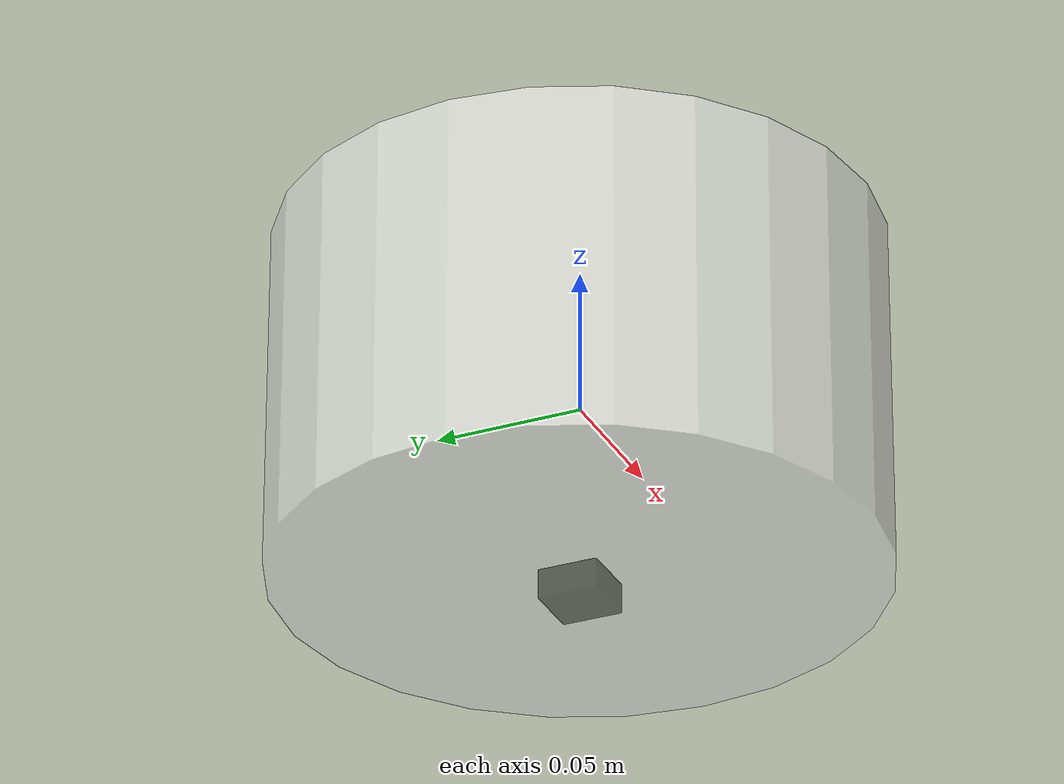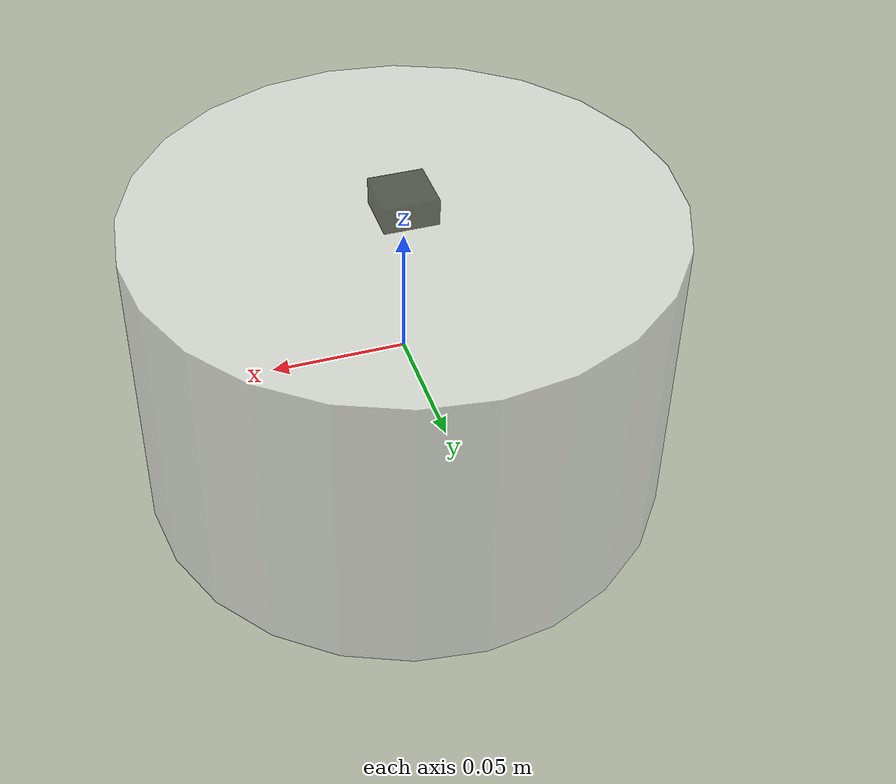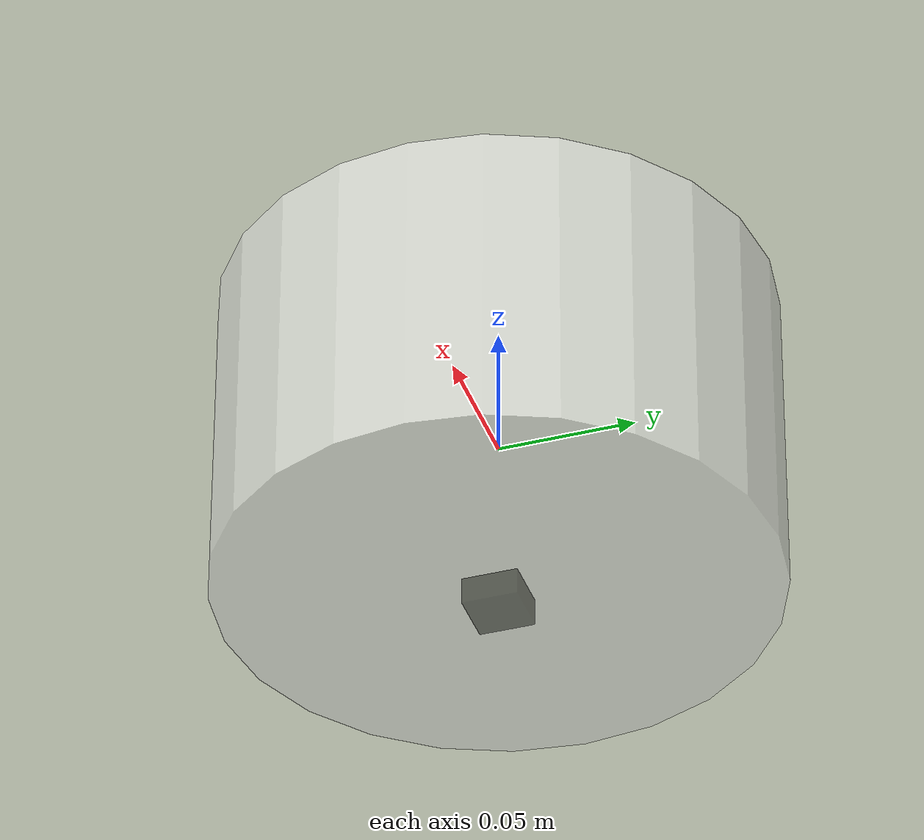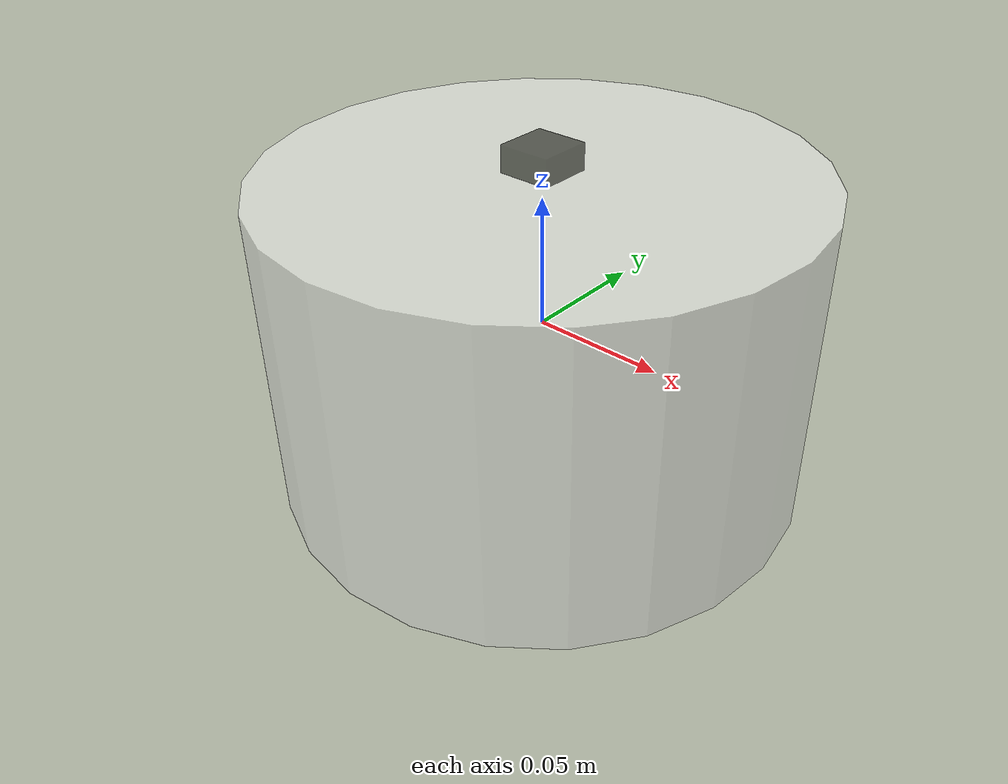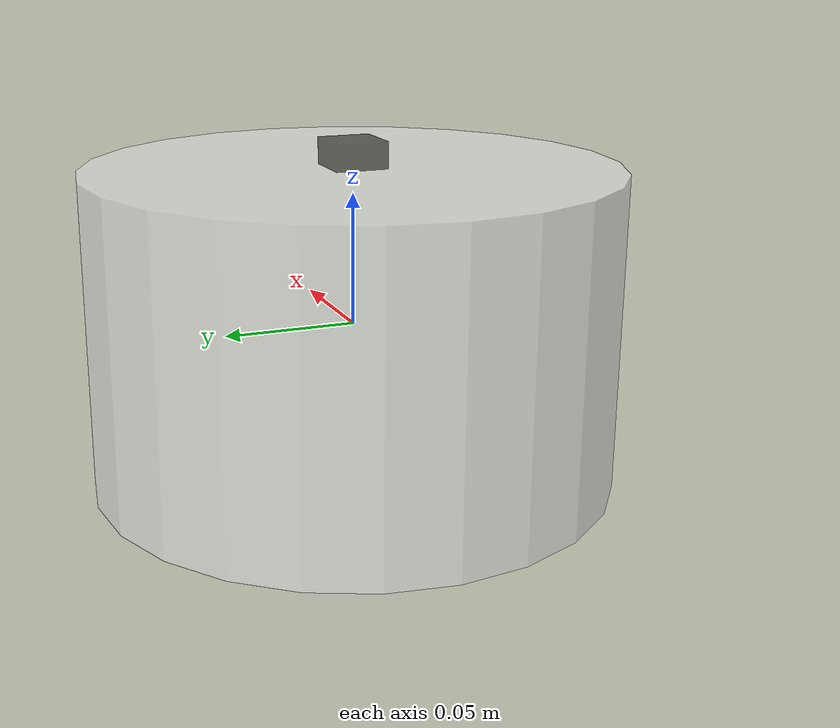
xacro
<?xml version="1.0"?> <!-- 这是版本提示 -->
<robot xmlns:xacro="http://www.ros.org/wiki/xacro" name="my_robot">
    <xacro:macro name ="base_link" params="length radius">
        <!-- 机器人的身体 -->
        <link name="base_link">
            <!-- 部件的外观描述 -->
            <visual>
                <!-- 沿着自己几何中心偏移和旋转 -->
                <origin xyz="0.0 0.0 0.0" rpy="0.0 0.0 0.0"/>
                <!-- 几何形状 -->
                <geometry>
                    <!-- 圆柱体 -->
                    <cylinder radius="${radius}" length="${length}"/>
                </geometry>
                <!-- 材质颜色 -->
                <material name="white">
                    <color rgba="1.0 1.0 1.0 0.5"/>
                </material>
            </visual>
        </link>
    </xacro:macro>

    <xacro:macro name ="IMU_link" params="imu_name xyz">
        <!-- 机器人的IMU，惯性测量单元传感器 -->
        <link name="${imu_name}_link">
            <!-- 部件的外观描述 -->
            <visual>
                <!-- 沿着自己几何中心偏移和旋转 -->
                <origin xyz="${xyz}" rpy="0.0 0.0 0.0"/>
                <!-- 几何形状 -->
                <geometry>
                    <!-- 立方体 -->
                    <box size="0.02 0.02 0.02"/>
                </geometry>
                <!-- 材质颜色 -->
                <material name="black">
                    <color rgba="0.0 0.0 0.0 0.5"/>
                </material>
            </visual>
        </link>

        <!-- 机器人的关节，用于组合机器人的部件, type是可动还是不可动 -->
        <joint name="${imu_name}_joint" type="fixed">
            <!-- 关节的父部件 -->
            <parent link="base_link"/>
            <!-- 关节的子部件 -->
            <child link="${imu_name}_link"/>
            <!-- 关节的偏移和旋转 -->
            <origin xyz="${xyz}" rpy="0.0 0.0 0.0"/>
        </joint>
    </xacro:macro>

    <xacro:base_link length="0.12" radius="0.1"/>
    <xacro:IMU_link imu_name="IMU" xyz="0.0 0.0 0.03"/>
    <xacro:IMU_link imu_name="IMU2" xyz="0.0 0.0 -0.03"/>
</robot>
